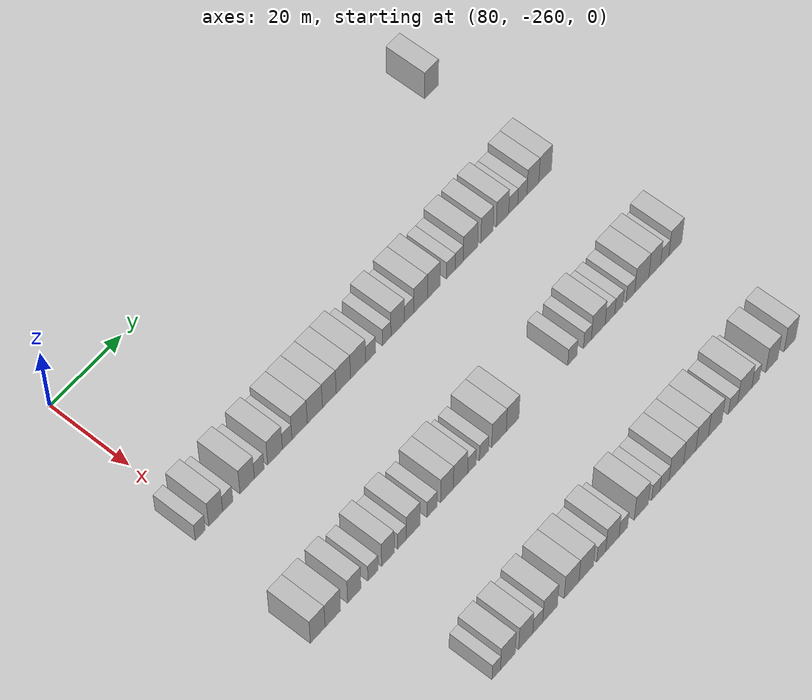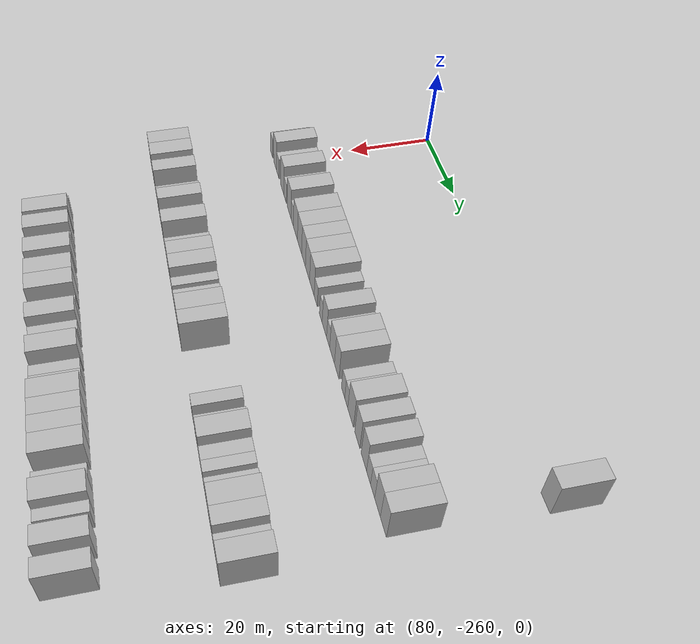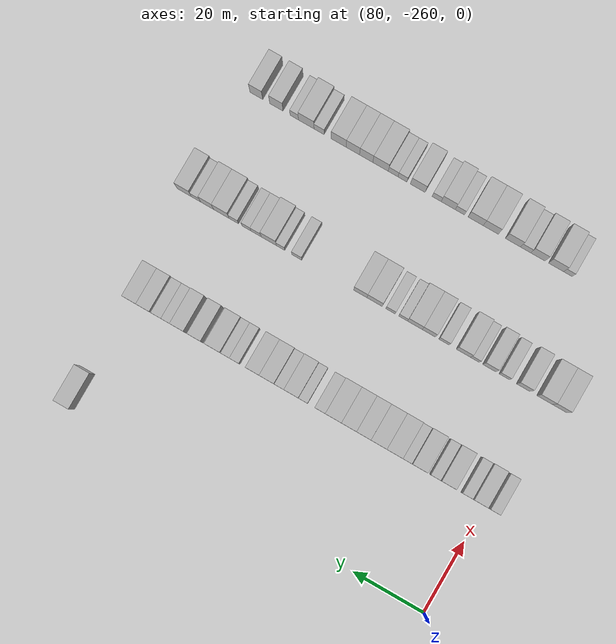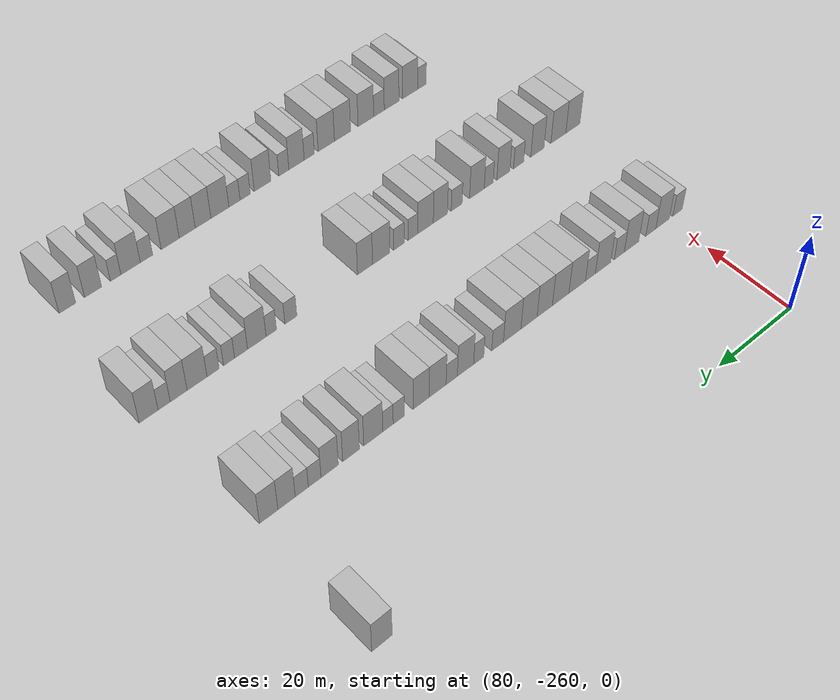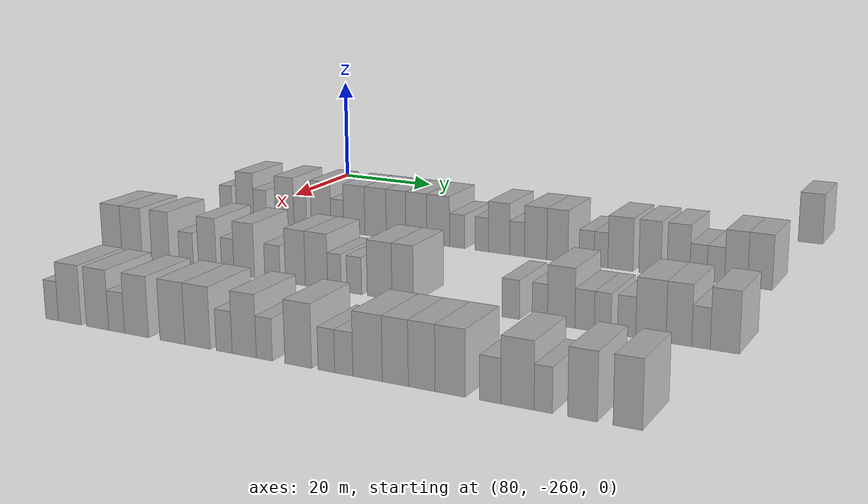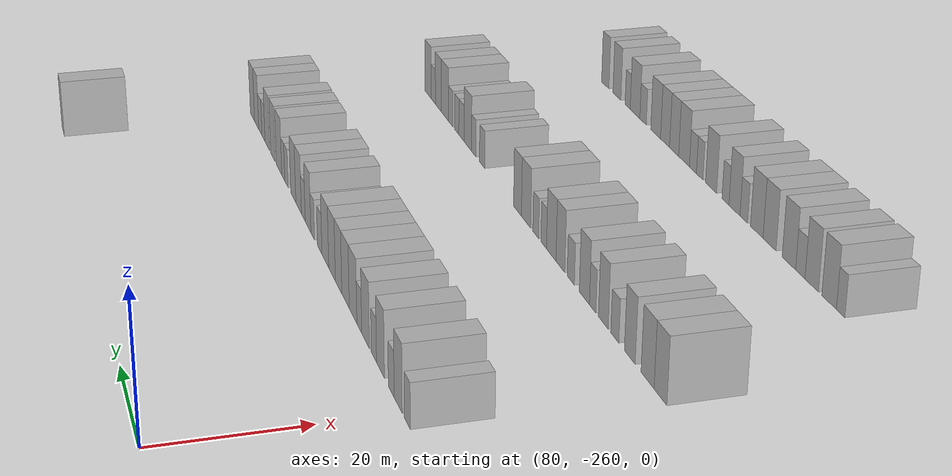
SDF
<sdf version="1.6">
 <world name="default">
  <model name="building_522">
   <static>1</static>
   <pose>85.0000 -158.7223 0 0.000000 0.000000 0.000000</pose>
   <link name="link">
    <pose>0 0 4.50 0 0 0</pose>
    <collision name="collision"><geometry><box><size>10.0000 4.3105 9.0000</size></box></geometry></collision>
    <visual name="visual">
     <cast_shadows>0</cast_shadows>
     <geometry><box><size>10.0000 4.3105 9.0000</size></box></geometry>
     <material>
      <script>
       <uri>model://HANNAS_wall/materials/scripts</uri>
       <uri>model://HANNAS_wall/materials/textures</uri>
       <name>vrc/HANNAS_wall</name>
      </script>
     </material>
    </visual>
   </link>
  </model>
  <model name="building_717">
   <static>1</static>
   <pose>115.0000 -262.4936 0 0.000000 0.000000 0.000000</pose>
   <link name="link">
    <pose>0 0 3.00 0 0 0</pose>
    <collision name="collision"><geometry><box><size>10.0000 2.7873 6.0000</size></box></geometry></collision>
    <visual name="visual">
     <cast_shadows>0</cast_shadows>
     <geometry><box><size>10.0000 2.7873 6.0000</size></box></geometry>
     <material>
      <script>
       <uri>model://HANNAS_wall/materials/scripts</uri>
       <uri>model://HANNAS_wall/materials/textures</uri>
       <name>vrc/HANNAS_wall</name>
      </script>
     </material>
    </visual>
   </link>
  </model>
  <model name="building_718">
   <static>1</static>
   <pose>115.0000 -258.1476 0 0.000000 0.000000 0.000000</pose>
   <link name="link">
    <pose>0 0 4.50 0 0 0</pose>
    <collision name="collision"><geometry><box><size>10.0000 3.9048 9.0000</size></box></geometry></collision>
    <visual name="visual">
     <cast_shadows>0</cast_shadows>
     <geometry><box><size>10.0000 3.9048 9.0000</size></box></geometry>
     <material>
      <script>
       <uri>model://HANNAS_wall/materials/scripts</uri>
       <uri>model://HANNAS_wall/materials/textures</uri>
       <name>vrc/HANNAS_wall</name>
      </script>
     </material>
    </visual>
   </link>
  </model>
  <model name="building_719">
   <static>1</static>
   <pose>115.0000 -254.7558 0 0.000000 0.000000 0.000000</pose>
   <link name="link">
    <pose>0 0 3.00 0 0 0</pose>
    <collision name="collision"><geometry><box><size>10.0000 2.8788 6.0000</size></box></geometry></collision>
    <visual name="visual">
     <cast_shadows>0</cast_shadows>
     <geometry><box><size>10.0000 2.8788 6.0000</size></box></geometry>
     <material>
      <script>
       <uri>model://HANNAS_wall/materials/scripts</uri>
       <uri>model://HANNAS_wall/materials/textures</uri>
       <name>vrc/HANNAS_wall</name>
      </script>
     </material>
    </visual>
   </link>
  </model>
  <model name="building_720">
   <static>1</static>
   <pose>115.0000 -249.2689 0 0.000000 0.000000 0.000000</pose>
   <link name="link">
    <pose>0 0 4.50 0 0 0</pose>
    <collision name="collision"><geometry><box><size>10.0000 4.0949 9.0000</size></box></geometry></collision>
    <visual name="visual">
     <cast_shadows>0</cast_shadows>
     <geometry><box><size>10.0000 4.0949 9.0000</size></box></geometry>
     <material>
      <script>
       <uri>model://HANNAS_wall/materials/scripts</uri>
       <uri>model://HANNAS_wall/materials/textures</uri>
       <name>vrc/HANNAS_wall</name>
      </script>
     </material>
    </visual>
   </link>
  </model>
  <model name="building_721">
   <static>1</static>
   <pose>115.0000 -245.8332 0 0.000000 0.000000 0.000000</pose>
   <link name="link">
    <pose>0 0 3.00 0 0 0</pose>
    <collision name="collision"><geometry><box><size>10.0000 2.7766 6.0000</size></box></geometry></collision>
    <visual name="visual">
     <cast_shadows>0</cast_shadows>
     <geometry><box><size>10.0000 2.7766 6.0000</size></box></geometry>
     <material>
      <script>
       <uri>model://HANNAS_wall/materials/scripts</uri>
       <uri>model://HANNAS_wall/materials/textures</uri>
       <name>vrc/HANNAS_wall</name>
      </script>
     </material>
    </visual>
   </link>
  </model>
  <model name="building_722">
   <static>1</static>
   <pose>115.0000 -241.3110 0 0.000000 0.000000 0.000000</pose>
   <link name="link">
    <pose>0 0 4.50 0 0 0</pose>
    <collision name="collision"><geometry><box><size>10.0000 4.2677 9.0000</size></box></geometry></collision>
    <visual name="visual">
     <cast_shadows>0</cast_shadows>
     <geometry><box><size>10.0000 4.2677 9.0000</size></box></geometry>
     <material>
      <script>
       <uri>model://HANNAS_wall/materials/scripts</uri>
       <uri>model://HANNAS_wall/materials/textures</uri>
       <name>vrc/HANNAS_wall</name>
      </script>
     </material>
    </visual>
   </link>
  </model>
  <model name="building_723">
   <static>1</static>
   <pose>115.0000 -237.8295 0 0.000000 0.000000 0.000000</pose>
   <link name="link">
    <pose>0 0 3.00 0 0 0</pose>
    <collision name="collision"><geometry><box><size>10.0000 2.6954 6.0000</size></box></geometry></collision>
    <visual name="visual">
     <cast_shadows>0</cast_shadows>
     <geometry><box><size>10.0000 2.6954 6.0000</size></box></geometry>
     <material>
      <script>
       <uri>model://HANNAS_wall/materials/scripts</uri>
       <uri>model://HANNAS_wall/materials/textures</uri>
       <name>vrc/HANNAS_wall</name>
      </script>
     </material>
    </visual>
   </link>
  </model>
  <model name="building_724">
   <static>1</static>
   <pose>115.0000 -234.2529 0 0.000000 0.000000 0.000000</pose>
   <link name="link">
    <pose>0 0 4.50 0 0 0</pose>
    <collision name="collision"><geometry><box><size>10.0000 4.4577 9.0000</size></box></geometry></collision>
    <visual name="visual">
     <cast_shadows>0</cast_shadows>
     <geometry><box><size>10.0000 4.4577 9.0000</size></box></geometry>
     <material>
      <script>
       <uri>model://HANNAS_wall/materials/scripts</uri>
       <uri>model://HANNAS_wall/materials/textures</uri>
       <name>vrc/HANNAS_wall</name>
      </script>
     </material>
    </visual>
   </link>
  </model>
  <model name="building_725">
   <static>1</static>
   <pose>115.0000 -229.8142 0 0.000000 0.000000 0.000000</pose>
   <link name="link">
    <pose>0 0 4.50 0 0 0</pose>
    <collision name="collision"><geometry><box><size>10.0000 4.4198 9.0000</size></box></geometry></collision>
    <visual name="visual">
     <cast_shadows>0</cast_shadows>
     <geometry><box><size>10.0000 4.4198 9.0000</size></box></geometry>
     <material>
      <script>
       <uri>model://HANNAS_wall/materials/scripts</uri>
       <uri>model://HANNAS_wall/materials/textures</uri>
       <name>vrc/HANNAS_wall</name>
      </script>
     </material>
    </visual>
   </link>
  </model>
  <model name="building_726">
   <static>1</static>
   <pose>115.0000 -225.6000 0 0.000000 0.000000 0.000000</pose>
   <link name="link">
    <pose>0 0 4.50 0 0 0</pose>
    <collision name="collision"><geometry><box><size>10.0000 4.0085 9.0000</size></box></geometry></collision>
    <visual name="visual">
     <cast_shadows>0</cast_shadows>
     <geometry><box><size>10.0000 4.0085 9.0000</size></box></geometry>
     <material>
      <script>
       <uri>model://HANNAS_wall/materials/scripts</uri>
       <uri>model://HANNAS_wall/materials/textures</uri>
       <name>vrc/HANNAS_wall</name>
      </script>
     </material>
    </visual>
   </link>
  </model>
  <model name="building_727">
   <static>1</static>
   <pose>115.0000 -221.4901 0 0.000000 0.000000 0.000000</pose>
   <link name="link">
    <pose>0 0 4.50 0 0 0</pose>
    <collision name="collision"><geometry><box><size>10.0000 4.2113 9.0000</size></box></geometry></collision>
    <visual name="visual">
     <cast_shadows>0</cast_shadows>
     <geometry><box><size>10.0000 4.2113 9.0000</size></box></geometry>
     <material>
      <script>
       <uri>model://HANNAS_wall/materials/scripts</uri>
       <uri>model://HANNAS_wall/materials/textures</uri>
       <name>vrc/HANNAS_wall</name>
      </script>
     </material>
    </visual>
   </link>
  </model>
  <model name="building_728">
   <static>1</static>
   <pose>115.0000 -217.1423 0 0.000000 0.000000 0.000000</pose>
   <link name="link">
    <pose>0 0 4.50 0 0 0</pose>
    <collision name="collision"><geometry><box><size>10.0000 4.4844 9.0000</size></box></geometry></collision>
    <visual name="visual">
     <cast_shadows>0</cast_shadows>
     <geometry><box><size>10.0000 4.4844 9.0000</size></box></geometry>
     <material>
      <script>
       <uri>model://HANNAS_wall/materials/scripts</uri>
       <uri>model://HANNAS_wall/materials/textures</uri>
       <name>vrc/HANNAS_wall</name>
      </script>
     </material>
    </visual>
   </link>
  </model>
  <model name="building_729">
   <static>1</static>
   <pose>115.0000 -213.4119 0 0.000000 0.000000 0.000000</pose>
   <link name="link">
    <pose>0 0 3.00 0 0 0</pose>
    <collision name="collision"><geometry><box><size>10.0000 2.9763 6.0000</size></box></geometry></collision>
    <visual name="visual">
     <cast_shadows>0</cast_shadows>
     <geometry><box><size>10.0000 2.9763 6.0000</size></box></geometry>
     <material>
      <script>
       <uri>model://HANNAS_wall/materials/scripts</uri>
       <uri>model://HANNAS_wall/materials/textures</uri>
       <name>vrc/HANNAS_wall</name>
      </script>
     </material>
    </visual>
   </link>
  </model>
  <model name="building_730">
   <static>1</static>
   <pose>115.0000 -208.6517 0 0.000000 0.000000 0.000000</pose>
   <link name="link">
    <pose>0 0 3.00 0 0 0</pose>
    <collision name="collision"><geometry><box><size>10.0000 2.5440 6.0000</size></box></geometry></collision>
    <visual name="visual">
     <cast_shadows>0</cast_shadows>
     <geometry><box><size>10.0000 2.5440 6.0000</size></box></geometry>
     <material>
      <script>
       <uri>model://HANNAS_wall/materials/scripts</uri>
       <uri>model://HANNAS_wall/materials/textures</uri>
       <name>vrc/HANNAS_wall</name>
      </script>
     </material>
    </visual>
   </link>
  </model>
  <model name="building_731">
   <static>1</static>
   <pose>115.0000 -205.3633 0 0.000000 0.000000 0.000000</pose>
   <link name="link">
    <pose>0 0 4.50 0 0 0</pose>
    <collision name="collision"><geometry><box><size>10.0000 4.0328 9.0000</size></box></geometry></collision>
    <visual name="visual">
     <cast_shadows>0</cast_shadows>
     <geometry><box><size>10.0000 4.0328 9.0000</size></box></geometry>
     <material>
      <script>
       <uri>model://HANNAS_wall/materials/scripts</uri>
       <uri>model://HANNAS_wall/materials/textures</uri>
       <name>vrc/HANNAS_wall</name>
      </script>
     </material>
    </visual>
   </link>
  </model>
  <model name="building_732">
   <static>1</static>
   <pose>115.0000 -201.9618 0 0.000000 0.000000 0.000000</pose>
   <link name="link">
    <pose>0 0 3.00 0 0 0</pose>
    <collision name="collision"><geometry><box><size>10.0000 2.7702 6.0000</size></box></geometry></collision>
    <visual name="visual">
     <cast_shadows>0</cast_shadows>
     <geometry><box><size>10.0000 2.7702 6.0000</size></box></geometry>
     <material>
      <script>
       <uri>model://HANNAS_wall/materials/scripts</uri>
       <uri>model://HANNAS_wall/materials/textures</uri>
       <name>vrc/HANNAS_wall</name>
      </script>
     </material>
    </visual>
   </link>
  </model>
  <model name="building_733">
   <static>1</static>
   <pose>115.0000 -198.5124 0 0.000000 0.000000 0.000000</pose>
   <link name="link">
    <pose>0 0 4.50 0 0 0</pose>
    <collision name="collision"><geometry><box><size>10.0000 4.1286 9.0000</size></box></geometry></collision>
    <visual name="visual">
     <cast_shadows>0</cast_shadows>
     <geometry><box><size>10.0000 4.1286 9.0000</size></box></geometry>
     <material>
      <script>
       <uri>model://HANNAS_wall/materials/scripts</uri>
       <uri>model://HANNAS_wall/materials/textures</uri>
       <name>vrc/HANNAS_wall</name>
      </script>
     </material>
    </visual>
   </link>
  </model>
  <model name="building_734">
   <static>1</static>
   <pose>115.0000 -194.5249 0 0.000000 0.000000 0.000000</pose>
   <link name="link">
    <pose>0 0 4.50 0 0 0</pose>
    <collision name="collision"><geometry><box><size>10.0000 3.8463 9.0000</size></box></geometry></collision>
    <visual name="visual">
     <cast_shadows>0</cast_shadows>
     <geometry><box><size>10.0000 3.8463 9.0000</size></box></geometry>
     <material>
      <script>
       <uri>model://HANNAS_wall/materials/scripts</uri>
       <uri>model://HANNAS_wall/materials/textures</uri>
       <name>vrc/HANNAS_wall</name>
      </script>
     </material>
    </visual>
   </link>
  </model>
  <model name="building_735">
   <static>1</static>
   <pose>115.0000 -189.2625 0 0.000000 0.000000 0.000000</pose>
   <link name="link">
    <pose>0 0 3.00 0 0 0</pose>
    <collision name="collision"><geometry><box><size>10.0000 2.6785 6.0000</size></box></geometry></collision>
    <visual name="visual">
     <cast_shadows>0</cast_shadows>
     <geometry><box><size>10.0000 2.6785 6.0000</size></box></geometry>
     <material>
      <script>
       <uri>model://HANNAS_wall/materials/scripts</uri>
       <uri>model://HANNAS_wall/materials/textures</uri>
       <name>vrc/HANNAS_wall</name>
      </script>
     </material>
    </visual>
   </link>
  </model>
  <model name="building_736">
   <static>1</static>
   <pose>115.0000 -186.7034 0 0.000000 0.000000 0.000000</pose>
   <link name="link">
    <pose>0 0 3.00 0 0 0</pose>
    <collision name="collision"><geometry><box><size>10.0000 2.4399 6.0000</size></box></geometry></collision>
    <visual name="visual">
     <cast_shadows>0</cast_shadows>
     <geometry><box><size>10.0000 2.4399 6.0000</size></box></geometry>
     <material>
      <script>
       <uri>model://HANNAS_wall/materials/scripts</uri>
       <uri>model://HANNAS_wall/materials/textures</uri>
       <name>vrc/HANNAS_wall</name>
      </script>
     </material>
    </visual>
   </link>
  </model>
  <model name="building_737">
   <static>1</static>
   <pose>115.0000 -183.2917 0 0.000000 0.000000 0.000000</pose>
   <link name="link">
    <pose>0 0 4.50 0 0 0</pose>
    <collision name="collision"><geometry><box><size>10.0000 4.3834 9.0000</size></box></geometry></collision>
    <visual name="visual">
     <cast_shadows>0</cast_shadows>
     <geometry><box><size>10.0000 4.3834 9.0000</size></box></geometry>
     <material>
      <script>
       <uri>model://HANNAS_wall/materials/scripts</uri>
       <uri>model://HANNAS_wall/materials/textures</uri>
       <name>vrc/HANNAS_wall</name>
      </script>
     </material>
    </visual>
   </link>
  </model>
  <model name="building_738">
   <static>1</static>
   <pose>115.0000 -178.2045 0 0.000000 0.000000 0.000000</pose>
   <link name="link">
    <pose>0 0 4.50 0 0 0</pose>
    <collision name="collision"><geometry><box><size>10.0000 3.7910 9.0000</size></box></geometry></collision>
    <visual name="visual">
     <cast_shadows>0</cast_shadows>
     <geometry><box><size>10.0000 3.7910 9.0000</size></box></geometry>
     <material>
      <script>
       <uri>model://HANNAS_wall/materials/scripts</uri>
       <uri>model://HANNAS_wall/materials/textures</uri>
       <name>vrc/HANNAS_wall</name>
      </script>
     </material>
    </visual>
   </link>
  </model>
  <model name="building_739">
   <static>1</static>
   <pose>115.0000 -173.3795 0 0.000000 0.000000 0.000000</pose>
   <link name="link">
    <pose>0 0 4.50 0 0 0</pose>
    <collision name="collision"><geometry><box><size>10.0000 3.8592 9.0000</size></box></geometry></collision>
    <visual name="visual">
     <cast_shadows>0</cast_shadows>
     <geometry><box><size>10.0000 3.8592 9.0000</size></box></geometry>
     <material>
      <script>
       <uri>model://HANNAS_wall/materials/scripts</uri>
       <uri>model://HANNAS_wall/materials/textures</uri>
       <name>vrc/HANNAS_wall</name>
      </script>
     </material>
    </visual>
   </link>
  </model>
  <model name="building_740">
   <static>1</static>
   <pose>115.0000 -170.0487 0 0.000000 0.000000 0.000000</pose>
   <link name="link">
    <pose>0 0 3.00 0 0 0</pose>
    <collision name="collision"><geometry><box><size>10.0000 2.8023 6.0000</size></box></geometry></collision>
    <visual name="visual">
     <cast_shadows>0</cast_shadows>
     <geometry><box><size>10.0000 2.8023 6.0000</size></box></geometry>
     <material>
      <script>
       <uri>model://HANNAS_wall/materials/scripts</uri>
       <uri>model://HANNAS_wall/materials/textures</uri>
       <name>vrc/HANNAS_wall</name>
      </script>
     </material>
    </visual>
   </link>
  </model>
  <model name="building_741">
   <static>1</static>
   <pose>115.0000 -167.2041 0 0.000000 0.000000 0.000000</pose>
   <link name="link">
    <pose>0 0 3.00 0 0 0</pose>
    <collision name="collision"><geometry><box><size>10.0000 2.8870 6.0000</size></box></geometry></collision>
    <visual name="visual">
     <cast_shadows>0</cast_shadows>
     <geometry><box><size>10.0000 2.8870 6.0000</size></box></geometry>
     <material>
      <script>
       <uri>model://HANNAS_wall/materials/scripts</uri>
       <uri>model://HANNAS_wall/materials/textures</uri>
       <name>vrc/HANNAS_wall</name>
      </script>
     </material>
    </visual>
   </link>
  </model>
  <model name="building_742">
   <static>1</static>
   <pose>115.0000 -163.8816 0 0.000000 0.000000 0.000000</pose>
   <link name="link">
    <pose>0 0 4.50 0 0 0</pose>
    <collision name="collision"><geometry><box><size>10.0000 3.7578 9.0000</size></box></geometry></collision>
    <visual name="visual">
     <cast_shadows>0</cast_shadows>
     <geometry><box><size>10.0000 3.7578 9.0000</size></box></geometry>
     <material>
      <script>
       <uri>model://HANNAS_wall/materials/scripts</uri>
       <uri>model://HANNAS_wall/materials/textures</uri>
       <name>vrc/HANNAS_wall</name>
      </script>
     </material>
    </visual>
   </link>
  </model>
  <model name="building_743">
   <static>1</static>
   <pose>115.0000 -160.0214 0 0.000000 0.000000 0.000000</pose>
   <link name="link">
    <pose>0 0 4.50 0 0 0</pose>
    <collision name="collision"><geometry><box><size>10.0000 3.9627 9.0000</size></box></geometry></collision>
    <visual name="visual">
     <cast_shadows>0</cast_shadows>
     <geometry><box><size>10.0000 3.9627 9.0000</size></box></geometry>
     <material>
      <script>
       <uri>model://HANNAS_wall/materials/scripts</uri>
       <uri>model://HANNAS_wall/materials/textures</uri>
       <name>vrc/HANNAS_wall</name>
      </script>
     </material>
    </visual>
   </link>
  </model>
  <model name="building_941">
   <static>1</static>
   <pose>145.0000 -264.1878 0 0.000000 0.000000 0.000000</pose>
   <link name="link">
    <pose>0 0 4.50 0 0 0</pose>
    <collision name="collision"><geometry><box><size>10.0000 4.1426 9.0000</size></box></geometry></collision>
    <visual name="visual">
     <cast_shadows>0</cast_shadows>
     <geometry><box><size>10.0000 4.1426 9.0000</size></box></geometry>
     <material>
      <script>
       <uri>model://HANNAS_wall/materials/scripts</uri>
       <uri>model://HANNAS_wall/materials/textures</uri>
       <name>vrc/HANNAS_wall</name>
      </script>
     </material>
    </visual>
   </link>
  </model>
  <model name="building_942">
   <static>1</static>
   <pose>145.0000 -259.9372 0 0.000000 0.000000 0.000000</pose>
   <link name="link">
    <pose>0 0 4.50 0 0 0</pose>
    <collision name="collision"><geometry><box><size>10.0000 4.3585 9.0000</size></box></geometry></collision>
    <visual name="visual">
     <cast_shadows>0</cast_shadows>
     <geometry><box><size>10.0000 4.3585 9.0000</size></box></geometry>
     <material>
      <script>
       <uri>model://HANNAS_wall/materials/scripts</uri>
       <uri>model://HANNAS_wall/materials/textures</uri>
       <name>vrc/HANNAS_wall</name>
      </script>
     </material>
    </visual>
   </link>
  </model>
  <model name="building_943">
   <static>1</static>
   <pose>145.0000 -253.8679 0 0.000000 0.000000 0.000000</pose>
   <link name="link">
    <pose>0 0 4.50 0 0 0</pose>
    <collision name="collision"><geometry><box><size>10.0000 3.7802 9.0000</size></box></geometry></collision>
    <visual name="visual">
     <cast_shadows>0</cast_shadows>
     <geometry><box><size>10.0000 3.7802 9.0000</size></box></geometry>
     <material>
      <script>
       <uri>model://HANNAS_wall/materials/scripts</uri>
       <uri>model://HANNAS_wall/materials/textures</uri>
       <name>vrc/HANNAS_wall</name>
      </script>
     </material>
    </visual>
   </link>
  </model>
  <model name="building_944">
   <static>1</static>
   <pose>145.0000 -248.5201 0 0.000000 0.000000 0.000000</pose>
   <link name="link">
    <pose>0 0 3.00 0 0 0</pose>
    <collision name="collision"><geometry><box><size>10.0000 2.9154 6.0000</size></box></geometry></collision>
    <visual name="visual">
     <cast_shadows>0</cast_shadows>
     <geometry><box><size>10.0000 2.9154 6.0000</size></box></geometry>
     <material>
      <script>
       <uri>model://HANNAS_wall/materials/scripts</uri>
       <uri>model://HANNAS_wall/materials/textures</uri>
       <name>vrc/HANNAS_wall</name>
      </script>
     </material>
    </visual>
   </link>
  </model>
  <model name="building_945">
   <static>1</static>
   <pose>145.0000 -244.2402 0 0.000000 0.000000 0.000000</pose>
   <link name="link">
    <pose>0 0 4.50 0 0 0</pose>
    <collision name="collision"><geometry><box><size>10.0000 3.6443 9.0000</size></box></geometry></collision>
    <visual name="visual">
     <cast_shadows>0</cast_shadows>
     <geometry><box><size>10.0000 3.6443 9.0000</size></box></geometry>
     <material>
      <script>
       <uri>model://HANNAS_wall/materials/scripts</uri>
       <uri>model://HANNAS_wall/materials/textures</uri>
       <name>vrc/HANNAS_wall</name>
      </script>
     </material>
    </visual>
   </link>
  </model>
  <model name="building_946">
   <static>1</static>
   <pose>145.0000 -240.1816 0 0.000000 0.000000 0.000000</pose>
   <link name="link">
    <pose>0 0 3.00 0 0 0</pose>
    <collision name="collision"><geometry><box><size>10.0000 2.4728 6.0000</size></box></geometry></collision>
    <visual name="visual">
     <cast_shadows>0</cast_shadows>
     <geometry><box><size>10.0000 2.4728 6.0000</size></box></geometry>
     <material>
      <script>
       <uri>model://HANNAS_wall/materials/scripts</uri>
       <uri>model://HANNAS_wall/materials/textures</uri>
       <name>vrc/HANNAS_wall</name>
      </script>
     </material>
    </visual>
   </link>
  </model>
  <model name="building_947">
   <static>1</static>
   <pose>145.0000 -236.9257 0 0.000000 0.000000 0.000000</pose>
   <link name="link">
    <pose>0 0 4.50 0 0 0</pose>
    <collision name="collision"><geometry><box><size>10.0000 4.0391 9.0000</size></box></geometry></collision>
    <visual name="visual">
     <cast_shadows>0</cast_shadows>
     <geometry><box><size>10.0000 4.0391 9.0000</size></box></geometry>
     <material>
      <script>
       <uri>model://HANNAS_wall/materials/scripts</uri>
       <uri>model://HANNAS_wall/materials/textures</uri>
       <name>vrc/HANNAS_wall</name>
      </script>
     </material>
    </visual>
   </link>
  </model>
  <model name="building_948">
   <static>1</static>
   <pose>145.0000 -231.4304 0 0.000000 0.000000 0.000000</pose>
   <link name="link">
    <pose>0 0 3.00 0 0 0</pose>
    <collision name="collision"><geometry><box><size>10.0000 2.9514 6.0000</size></box></geometry></collision>
    <visual name="visual">
     <cast_shadows>0</cast_shadows>
     <geometry><box><size>10.0000 2.9514 6.0000</size></box></geometry>
     <material>
      <script>
       <uri>model://HANNAS_wall/materials/scripts</uri>
       <uri>model://HANNAS_wall/materials/textures</uri>
       <name>vrc/HANNAS_wall</name>
      </script>
     </material>
    </visual>
   </link>
  </model>
  <model name="building_949">
   <static>1</static>
   <pose>145.0000 -227.0706 0 0.000000 0.000000 0.000000</pose>
   <link name="link">
    <pose>0 0 4.50 0 0 0</pose>
    <collision name="collision"><geometry><box><size>10.0000 3.7683 9.0000</size></box></geometry></collision>
    <visual name="visual">
     <cast_shadows>0</cast_shadows>
     <geometry><box><size>10.0000 3.7683 9.0000</size></box></geometry>
     <material>
      <script>
       <uri>model://HANNAS_wall/materials/scripts</uri>
       <uri>model://HANNAS_wall/materials/textures</uri>
       <name>vrc/HANNAS_wall</name>
      </script>
     </material>
    </visual>
   </link>
  </model>
  <model name="building_950">
   <static>1</static>
   <pose>145.0000 -223.1091 0 0.000000 0.000000 0.000000</pose>
   <link name="link">
    <pose>0 0 4.50 0 0 0</pose>
    <collision name="collision"><geometry><box><size>10.0000 4.1546 9.0000</size></box></geometry></collision>
    <visual name="visual">
     <cast_shadows>0</cast_shadows>
     <geometry><box><size>10.0000 4.1546 9.0000</size></box></geometry>
     <material>
      <script>
       <uri>model://HANNAS_wall/materials/scripts</uri>
       <uri>model://HANNAS_wall/materials/textures</uri>
       <name>vrc/HANNAS_wall</name>
      </script>
     </material>
    </visual>
   </link>
  </model>
  <model name="building_951">
   <static>1</static>
   <pose>145.0000 -219.7799 0 0.000000 0.000000 0.000000</pose>
   <link name="link">
    <pose>0 0 3.00 0 0 0</pose>
    <collision name="collision"><geometry><box><size>10.0000 2.5037 6.0000</size></box></geometry></collision>
    <visual name="visual">
     <cast_shadows>0</cast_shadows>
     <geometry><box><size>10.0000 2.5037 6.0000</size></box></geometry>
     <material>
      <script>
       <uri>model://HANNAS_wall/materials/scripts</uri>
       <uri>model://HANNAS_wall/materials/textures</uri>
       <name>vrc/HANNAS_wall</name>
      </script>
     </material>
    </visual>
   </link>
  </model>
  <model name="building_952">
   <static>1</static>
   <pose>145.0000 -216.1854 0 0.000000 0.000000 0.000000</pose>
   <link name="link">
    <pose>0 0 3.00 0 0 0</pose>
    <collision name="collision"><geometry><box><size>10.0000 2.6853 6.0000</size></box></geometry></collision>
    <visual name="visual">
     <cast_shadows>0</cast_shadows>
     <geometry><box><size>10.0000 2.6853 6.0000</size></box></geometry>
     <material>
      <script>
       <uri>model://HANNAS_wall/materials/scripts</uri>
       <uri>model://HANNAS_wall/materials/textures</uri>
       <name>vrc/HANNAS_wall</name>
      </script>
     </material>
    </visual>
   </link>
  </model>
  <model name="building_953">
   <static>1</static>
   <pose>145.0000 -211.6534 0 0.000000 0.000000 0.000000</pose>
   <link name="link">
    <pose>0 0 4.50 0 0 0</pose>
    <collision name="collision"><geometry><box><size>10.0000 4.3787 9.0000</size></box></geometry></collision>
    <visual name="visual">
     <cast_shadows>0</cast_shadows>
     <geometry><box><size>10.0000 4.3787 9.0000</size></box></geometry>
     <material>
      <script>
       <uri>model://HANNAS_wall/materials/scripts</uri>
       <uri>model://HANNAS_wall/materials/textures</uri>
       <name>vrc/HANNAS_wall</name>
      </script>
     </material>
    </visual>
   </link>
  </model>
  <model name="building_954">
   <static>1</static>
   <pose>145.0000 -207.5703 0 0.000000 0.000000 0.000000</pose>
   <link name="link">
    <pose>0 0 4.50 0 0 0</pose>
    <collision name="collision"><geometry><box><size>10.0000 3.7874 9.0000</size></box></geometry></collision>
    <visual name="visual">
     <cast_shadows>0</cast_shadows>
     <geometry><box><size>10.0000 3.7874 9.0000</size></box></geometry>
     <material>
      <script>
       <uri>model://HANNAS_wall/materials/scripts</uri>
       <uri>model://HANNAS_wall/materials/textures</uri>
       <name>vrc/HANNAS_wall</name>
      </script>
     </material>
    </visual>
   </link>
  </model>
  <model name="building_955">
   <static>1</static>
   <pose>145.0000 -189.4089 0 0.000000 0.000000 0.000000</pose>
   <link name="link">
    <pose>0 0 3.00 0 0 0</pose>
    <collision name="collision"><geometry><box><size>10.0000 2.8451 6.0000</size></box></geometry></collision>
    <visual name="visual">
     <cast_shadows>0</cast_shadows>
     <geometry><box><size>10.0000 2.8451 6.0000</size></box></geometry>
     <material>
      <script>
       <uri>model://HANNAS_wall/materials/scripts</uri>
       <uri>model://HANNAS_wall/materials/textures</uri>
       <name>vrc/HANNAS_wall</name>
      </script>
     </material>
    </visual>
   </link>
  </model>
  <model name="building_956">
   <static>1</static>
   <pose>145.0000 -184.7686 0 0.000000 0.000000 0.000000</pose>
   <link name="link">
    <pose>0 0 3.00 0 0 0</pose>
    <collision name="collision"><geometry><box><size>10.0000 2.4355 6.0000</size></box></geometry></collision>
    <visual name="visual">
     <cast_shadows>0</cast_shadows>
     <geometry><box><size>10.0000 2.4355 6.0000</size></box></geometry>
     <material>
      <script>
       <uri>model://HANNAS_wall/materials/scripts</uri>
       <uri>model://HANNAS_wall/materials/textures</uri>
       <name>vrc/HANNAS_wall</name>
      </script>
     </material>
    </visual>
   </link>
  </model>
  <model name="building_957">
   <static>1</static>
   <pose>145.0000 -181.4010 0 0.000000 0.000000 0.000000</pose>
   <link name="link">
    <pose>0 0 4.50 0 0 0</pose>
    <collision name="collision"><geometry><box><size>10.0000 4.2997 9.0000</size></box></geometry></collision>
    <visual name="visual">
     <cast_shadows>0</cast_shadows>
     <geometry><box><size>10.0000 4.2997 9.0000</size></box></geometry>
     <material>
      <script>
       <uri>model://HANNAS_wall/materials/scripts</uri>
       <uri>model://HANNAS_wall/materials/textures</uri>
       <name>vrc/HANNAS_wall</name>
      </script>
     </material>
    </visual>
   </link>
  </model>
  <model name="building_958">
   <static>1</static>
   <pose>145.0000 -177.7543 0 0.000000 0.000000 0.000000</pose>
   <link name="link">
    <pose>0 0 3.00 0 0 0</pose>
    <collision name="collision"><geometry><box><size>10.0000 2.9938 6.0000</size></box></geometry></collision>
    <visual name="visual">
     <cast_shadows>0</cast_shadows>
     <geometry><box><size>10.0000 2.9938 6.0000</size></box></geometry>
     <material>
      <script>
       <uri>model://HANNAS_wall/materials/scripts</uri>
       <uri>model://HANNAS_wall/materials/textures</uri>
       <name>vrc/HANNAS_wall</name>
      </script>
     </material>
    </visual>
   </link>
  </model>
  <model name="building_959">
   <static>1</static>
   <pose>145.0000 -174.9954 0 0.000000 0.000000 0.000000</pose>
   <link name="link">
    <pose>0 0 3.00 0 0 0</pose>
    <collision name="collision"><geometry><box><size>10.0000 2.5240 6.0000</size></box></geometry></collision>
    <visual name="visual">
     <cast_shadows>0</cast_shadows>
     <geometry><box><size>10.0000 2.5240 6.0000</size></box></geometry>
     <material>
      <script>
       <uri>model://HANNAS_wall/materials/scripts</uri>
       <uri>model://HANNAS_wall/materials/textures</uri>
       <name>vrc/HANNAS_wall</name>
      </script>
     </material>
    </visual>
   </link>
  </model>
  <model name="building_960">
   <static>1</static>
   <pose>145.0000 -171.3748 0 0.000000 0.000000 0.000000</pose>
   <link name="link">
    <pose>0 0 3.00 0 0 0</pose>
    <collision name="collision"><geometry><box><size>10.0000 2.7172 6.0000</size></box></geometry></collision>
    <visual name="visual">
     <cast_shadows>0</cast_shadows>
     <geometry><box><size>10.0000 2.7172 6.0000</size></box></geometry>
     <material>
      <script>
       <uri>model://HANNAS_wall/materials/scripts</uri>
       <uri>model://HANNAS_wall/materials/textures</uri>
       <name>vrc/HANNAS_wall</name>
      </script>
     </material>
    </visual>
   </link>
  </model>
  <model name="building_961">
   <static>1</static>
   <pose>145.0000 -167.7943 0 0.000000 0.000000 0.000000</pose>
   <link name="link">
    <pose>0 0 4.50 0 0 0</pose>
    <collision name="collision"><geometry><box><size>10.0000 4.4437 9.0000</size></box></geometry></collision>
    <visual name="visual">
     <cast_shadows>0</cast_shadows>
     <geometry><box><size>10.0000 4.4437 9.0000</size></box></geometry>
     <material>
      <script>
       <uri>model://HANNAS_wall/materials/scripts</uri>
       <uri>model://HANNAS_wall/materials/textures</uri>
       <name>vrc/HANNAS_wall</name>
      </script>
     </material>
    </visual>
   </link>
  </model>
  <model name="building_962">
   <static>1</static>
   <pose>145.0000 -163.7093 0 0.000000 0.000000 0.000000</pose>
   <link name="link">
    <pose>0 0 4.50 0 0 0</pose>
    <collision name="collision"><geometry><box><size>10.0000 3.7263 9.0000</size></box></geometry></collision>
    <visual name="visual">
     <cast_shadows>0</cast_shadows>
     <geometry><box><size>10.0000 3.7263 9.0000</size></box></geometry>
     <material>
      <script>
       <uri>model://HANNAS_wall/materials/scripts</uri>
       <uri>model://HANNAS_wall/materials/textures</uri>
       <name>vrc/HANNAS_wall</name>
      </script>
     </material>
    </visual>
   </link>
  </model>
  <model name="building_963">
   <static>1</static>
   <pose>145.0000 -160.5197 0 0.000000 0.000000 0.000000</pose>
   <link name="link">
    <pose>0 0 3.00 0 0 0</pose>
    <collision name="collision"><geometry><box><size>10.0000 2.6530 6.0000</size></box></geometry></collision>
    <visual name="visual">
     <cast_shadows>0</cast_shadows>
     <geometry><box><size>10.0000 2.6530 6.0000</size></box></geometry>
     <material>
      <script>
       <uri>model://HANNAS_wall/materials/scripts</uri>
       <uri>model://HANNAS_wall/materials/textures</uri>
       <name>vrc/HANNAS_wall</name>
      </script>
     </material>
    </visual>
   </link>
  </model>
  <model name="building_964">
   <static>1</static>
   <pose>145.0000 -157.1366 0 0.000000 0.000000 0.000000</pose>
   <link name="link">
    <pose>0 0 4.50 0 0 0</pose>
    <collision name="collision"><geometry><box><size>10.0000 4.1133 9.0000</size></box></geometry></collision>
    <visual name="visual">
     <cast_shadows>0</cast_shadows>
     <geometry><box><size>10.0000 4.1133 9.0000</size></box></geometry>
     <material>
      <script>
       <uri>model://HANNAS_wall/materials/scripts</uri>
       <uri>model://HANNAS_wall/materials/textures</uri>
       <name>vrc/HANNAS_wall</name>
      </script>
     </material>
    </visual>
   </link>
  </model>
  <model name="building_1160">
   <static>1</static>
   <pose>175.0000 -249.6336 0 0.000000 0.000000 0.000000</pose>
   <link name="link">
    <pose>0 0 3.00 0 0 0</pose>
    <collision name="collision"><geometry><box><size>10.0000 2.4274 6.0000</size></box></geometry></collision>
    <visual name="visual">
     <cast_shadows>0</cast_shadows>
     <geometry><box><size>10.0000 2.4274 6.0000</size></box></geometry>
     <material>
      <script>
       <uri>model://HANNAS_wall/materials/scripts</uri>
       <uri>model://HANNAS_wall/materials/textures</uri>
       <name>vrc/HANNAS_wall</name>
      </script>
     </material>
    </visual>
   </link>
  </model>
  <model name="building_1161">
   <static>1</static>
   <pose>175.0000 -246.2828 0 0.000000 0.000000 0.000000</pose>
   <link name="link">
    <pose>0 0 4.50 0 0 0</pose>
    <collision name="collision"><geometry><box><size>10.0000 4.2743 9.0000</size></box></geometry></collision>
    <visual name="visual">
     <cast_shadows>0</cast_shadows>
     <geometry><box><size>10.0000 4.2743 9.0000</size></box></geometry>
     <material>
      <script>
       <uri>model://HANNAS_wall/materials/scripts</uri>
       <uri>model://HANNAS_wall/materials/textures</uri>
       <name>vrc/HANNAS_wall</name>
      </script>
     </material>
    </visual>
   </link>
  </model>
  <model name="building_1162">
   <static>1</static>
   <pose>175.0000 -241.0972 0 0.000000 0.000000 0.000000</pose>
   <link name="link">
    <pose>0 0 4.50 0 0 0</pose>
    <collision name="collision"><geometry><box><size>10.0000 4.0969 9.0000</size></box></geometry></collision>
    <visual name="visual">
     <cast_shadows>0</cast_shadows>
     <geometry><box><size>10.0000 4.0969 9.0000</size></box></geometry>
     <material>
      <script>
       <uri>model://HANNAS_wall/materials/scripts</uri>
       <uri>model://HANNAS_wall/materials/textures</uri>
       <name>vrc/HANNAS_wall</name>
      </script>
     </material>
    </visual>
   </link>
  </model>
  <model name="building_1163">
   <static>1</static>
   <pose>175.0000 -237.5926 0 0.000000 0.000000 0.000000</pose>
   <link name="link">
    <pose>0 0 3.00 0 0 0</pose>
    <collision name="collision"><geometry><box><size>10.0000 2.9122 6.0000</size></box></geometry></collision>
    <visual name="visual">
     <cast_shadows>0</cast_shadows>
     <geometry><box><size>10.0000 2.9122 6.0000</size></box></geometry>
     <material>
      <script>
       <uri>model://HANNAS_wall/materials/scripts</uri>
       <uri>model://HANNAS_wall/materials/textures</uri>
       <name>vrc/HANNAS_wall</name>
      </script>
     </material>
    </visual>
   </link>
  </model>
  <model name="building_1164">
   <static>1</static>
   <pose>175.0000 -233.9845 0 0.000000 0.000000 0.000000</pose>
   <link name="link">
    <pose>0 0 4.50 0 0 0</pose>
    <collision name="collision"><geometry><box><size>10.0000 4.3040 9.0000</size></box></geometry></collision>
    <visual name="visual">
     <cast_shadows>0</cast_shadows>
     <geometry><box><size>10.0000 4.3040 9.0000</size></box></geometry>
     <material>
      <script>
       <uri>model://HANNAS_wall/materials/scripts</uri>
       <uri>model://HANNAS_wall/materials/textures</uri>
       <name>vrc/HANNAS_wall</name>
      </script>
     </material>
    </visual>
   </link>
  </model>
  <model name="building_1165">
   <static>1</static>
   <pose>175.0000 -227.6616 0 0.000000 0.000000 0.000000</pose>
   <link name="link">
    <pose>0 0 4.50 0 0 0</pose>
    <collision name="collision"><geometry><box><size>10.0000 4.3418 9.0000</size></box></geometry></collision>
    <visual name="visual">
     <cast_shadows>0</cast_shadows>
     <geometry><box><size>10.0000 4.3418 9.0000</size></box></geometry>
     <material>
      <script>
       <uri>model://HANNAS_wall/materials/scripts</uri>
       <uri>model://HANNAS_wall/materials/textures</uri>
       <name>vrc/HANNAS_wall</name>
      </script>
     </material>
    </visual>
   </link>
  </model>
  <model name="building_1166">
   <static>1</static>
   <pose>175.0000 -223.3276 0 0.000000 0.000000 0.000000</pose>
   <link name="link">
    <pose>0 0 4.50 0 0 0</pose>
    <collision name="collision"><geometry><box><size>10.0000 4.3262 9.0000</size></box></geometry></collision>
    <visual name="visual">
     <cast_shadows>0</cast_shadows>
     <geometry><box><size>10.0000 4.3262 9.0000</size></box></geometry>
     <material>
      <script>
       <uri>model://HANNAS_wall/materials/scripts</uri>
       <uri>model://HANNAS_wall/materials/textures</uri>
       <name>vrc/HANNAS_wall</name>
      </script>
     </material>
    </visual>
   </link>
  </model>
  <model name="building_1167">
   <static>1</static>
   <pose>175.0000 -218.8287 0 0.000000 0.000000 0.000000</pose>
   <link name="link">
    <pose>0 0 3.00 0 0 0</pose>
    <collision name="collision"><geometry><box><size>10.0000 2.6717 6.0000</size></box></geometry></collision>
    <visual name="visual">
     <cast_shadows>0</cast_shadows>
     <geometry><box><size>10.0000 2.6717 6.0000</size></box></geometry>
     <material>
      <script>
       <uri>model://HANNAS_wall/materials/scripts</uri>
       <uri>model://HANNAS_wall/materials/textures</uri>
       <name>vrc/HANNAS_wall</name>
      </script>
     </material>
    </visual>
   </link>
  </model>
  <model name="building_1168">
   <static>1</static>
   <pose>175.0000 -215.4937 0 0.000000 0.000000 0.000000</pose>
   <link name="link">
    <pose>0 0 4.50 0 0 0</pose>
    <collision name="collision"><geometry><box><size>10.0000 3.9983 9.0000</size></box></geometry></collision>
    <visual name="visual">
     <cast_shadows>0</cast_shadows>
     <geometry><box><size>10.0000 3.9983 9.0000</size></box></geometry>
     <material>
      <script>
       <uri>model://HANNAS_wall/materials/scripts</uri>
       <uri>model://HANNAS_wall/materials/textures</uri>
       <name>vrc/HANNAS_wall</name>
      </script>
     </material>
    </visual>
   </link>
  </model>
  <model name="building_1169">
   <static>1</static>
   <pose>175.0000 -212.1964 0 0.000000 0.000000 0.000000</pose>
   <link name="link">
    <pose>0 0 3.00 0 0 0</pose>
    <collision name="collision"><geometry><box><size>10.0000 2.5963 6.0000</size></box></geometry></collision>
    <visual name="visual">
     <cast_shadows>0</cast_shadows>
     <geometry><box><size>10.0000 2.5963 6.0000</size></box></geometry>
     <material>
      <script>
       <uri>model://HANNAS_wall/materials/scripts</uri>
       <uri>model://HANNAS_wall/materials/textures</uri>
       <name>vrc/HANNAS_wall</name>
      </script>
     </material>
    </visual>
   </link>
  </model>
  <model name="building_1170">
   <static>1</static>
   <pose>175.0000 -206.7779 0 0.000000 0.000000 0.000000</pose>
   <link name="link">
    <pose>0 0 4.50 0 0 0</pose>
    <collision name="collision"><geometry><box><size>10.0000 4.2405 9.0000</size></box></geometry></collision>
    <visual name="visual">
     <cast_shadows>0</cast_shadows>
     <geometry><box><size>10.0000 4.2405 9.0000</size></box></geometry>
     <material>
      <script>
       <uri>model://HANNAS_wall/materials/scripts</uri>
       <uri>model://HANNAS_wall/materials/textures</uri>
       <name>vrc/HANNAS_wall</name>
      </script>
     </material>
    </visual>
   </link>
  </model>
  <model name="building_1171">
   <static>1</static>
   <pose>175.0000 -202.3778 0 0.000000 0.000000 0.000000</pose>
   <link name="link">
    <pose>0 0 3.00 0 0 0</pose>
    <collision name="collision"><geometry><box><size>10.0000 2.5599 6.0000</size></box></geometry></collision>
    <visual name="visual">
     <cast_shadows>0</cast_shadows>
     <geometry><box><size>10.0000 2.5599 6.0000</size></box></geometry>
     <material>
      <script>
       <uri>model://HANNAS_wall/materials/scripts</uri>
       <uri>model://HANNAS_wall/materials/textures</uri>
       <name>vrc/HANNAS_wall</name>
      </script>
     </material>
    </visual>
   </link>
  </model>
  <model name="building_1172">
   <static>1</static>
   <pose>175.0000 -199.7003 0 0.000000 0.000000 0.000000</pose>
   <link name="link">
    <pose>0 0 3.00 0 0 0</pose>
    <collision name="collision"><geometry><box><size>10.0000 2.7951 6.0000</size></box></geometry></collision>
    <visual name="visual">
     <cast_shadows>0</cast_shadows>
     <geometry><box><size>10.0000 2.7951 6.0000</size></box></geometry>
     <material>
      <script>
       <uri>model://HANNAS_wall/materials/scripts</uri>
       <uri>model://HANNAS_wall/materials/textures</uri>
       <name>vrc/HANNAS_wall</name>
      </script>
     </material>
    </visual>
   </link>
  </model>
  <model name="building_1173">
   <static>1</static>
   <pose>175.0000 -196.0929 0 0.000000 0.000000 0.000000</pose>
   <link name="link">
    <pose>0 0 4.50 0 0 0</pose>
    <collision name="collision"><geometry><box><size>10.0000 4.4197 9.0000</size></box></geometry></collision>
    <visual name="visual">
     <cast_shadows>0</cast_shadows>
     <geometry><box><size>10.0000 4.4197 9.0000</size></box></geometry>
     <material>
      <script>
       <uri>model://HANNAS_wall/materials/scripts</uri>
       <uri>model://HANNAS_wall/materials/textures</uri>
       <name>vrc/HANNAS_wall</name>
      </script>
     </material>
    </visual>
   </link>
  </model>
  <model name="building_1174">
   <static>1</static>
   <pose>175.0000 -191.9741 0 0.000000 0.000000 0.000000</pose>
   <link name="link">
    <pose>0 0 4.50 0 0 0</pose>
    <collision name="collision"><geometry><box><size>10.0000 3.8180 9.0000</size></box></geometry></collision>
    <visual name="visual">
     <cast_shadows>0</cast_shadows>
     <geometry><box><size>10.0000 3.8180 9.0000</size></box></geometry>
     <material>
      <script>
       <uri>model://HANNAS_wall/materials/scripts</uri>
       <uri>model://HANNAS_wall/materials/textures</uri>
       <name>vrc/HANNAS_wall</name>
      </script>
     </material>
    </visual>
   </link>
  </model>
  <model name="building_1175">
   <static>1</static>
   <pose>175.0000 -188.1334 0 0.000000 0.000000 0.000000</pose>
   <link name="link">
    <pose>0 0 4.50 0 0 0</pose>
    <collision name="collision"><geometry><box><size>10.0000 3.8634 9.0000</size></box></geometry></collision>
    <visual name="visual">
     <cast_shadows>0</cast_shadows>
     <geometry><box><size>10.0000 3.8634 9.0000</size></box></geometry>
     <material>
      <script>
       <uri>model://HANNAS_wall/materials/scripts</uri>
       <uri>model://HANNAS_wall/materials/textures</uri>
       <name>vrc/HANNAS_wall</name>
      </script>
     </material>
    </visual>
   </link>
  </model>
  <model name="building_1176">
   <static>1</static>
   <pose>175.0000 -184.0520 0 0.000000 0.000000 0.000000</pose>
   <link name="link">
    <pose>0 0 4.50 0 0 0</pose>
    <collision name="collision"><geometry><box><size>10.0000 4.2995 9.0000</size></box></geometry></collision>
    <visual name="visual">
     <cast_shadows>0</cast_shadows>
     <geometry><box><size>10.0000 4.2995 9.0000</size></box></geometry>
     <material>
      <script>
       <uri>model://HANNAS_wall/materials/scripts</uri>
       <uri>model://HANNAS_wall/materials/textures</uri>
       <name>vrc/HANNAS_wall</name>
      </script>
     </material>
    </visual>
   </link>
  </model>
  <model name="building_1177">
   <static>1</static>
   <pose>175.0000 -178.4486 0 0.000000 0.000000 0.000000</pose>
   <link name="link">
    <pose>0 0 3.00 0 0 0</pose>
    <collision name="collision"><geometry><box><size>10.0000 2.9072 6.0000</size></box></geometry></collision>
    <visual name="visual">
     <cast_shadows>0</cast_shadows>
     <geometry><box><size>10.0000 2.9072 6.0000</size></box></geometry>
     <material>
      <script>
       <uri>model://HANNAS_wall/materials/scripts</uri>
       <uri>model://HANNAS_wall/materials/textures</uri>
       <name>vrc/HANNAS_wall</name>
      </script>
     </material>
    </visual>
   </link>
  </model>
  <model name="building_1178">
   <static>1</static>
   <pose>175.0000 -174.7503 0 0.000000 0.000000 0.000000</pose>
   <link name="link">
    <pose>0 0 4.50 0 0 0</pose>
    <collision name="collision"><geometry><box><size>10.0000 4.4894 9.0000</size></box></geometry></collision>
    <visual name="visual">
     <cast_shadows>0</cast_shadows>
     <geometry><box><size>10.0000 4.4894 9.0000</size></box></geometry>
     <material>
      <script>
       <uri>model://HANNAS_wall/materials/scripts</uri>
       <uri>model://HANNAS_wall/materials/textures</uri>
       <name>vrc/HANNAS_wall</name>
      </script>
     </material>
    </visual>
   </link>
  </model>
  <model name="building_1179">
   <static>1</static>
   <pose>175.0000 -171.2935 0 0.000000 0.000000 0.000000</pose>
   <link name="link">
    <pose>0 0 3.00 0 0 0</pose>
    <collision name="collision"><geometry><box><size>10.0000 2.4243 6.0000</size></box></geometry></collision>
    <visual name="visual">
     <cast_shadows>0</cast_shadows>
     <geometry><box><size>10.0000 2.4243 6.0000</size></box></geometry>
     <material>
      <script>
       <uri>model://HANNAS_wall/materials/scripts</uri>
       <uri>model://HANNAS_wall/materials/textures</uri>
       <name>vrc/HANNAS_wall</name>
      </script>
     </material>
    </visual>
   </link>
  </model>
  <model name="building_1180">
   <static>1</static>
   <pose>175.0000 -166.1612 0 0.000000 0.000000 0.000000</pose>
   <link name="link">
    <pose>0 0 4.50 0 0 0</pose>
    <collision name="collision"><geometry><box><size>10.0000 3.8404 9.0000</size></box></geometry></collision>
    <visual name="visual">
     <cast_shadows>0</cast_shadows>
     <geometry><box><size>10.0000 3.8404 9.0000</size></box></geometry>
     <material>
      <script>
       <uri>model://HANNAS_wall/materials/scripts</uri>
       <uri>model://HANNAS_wall/materials/textures</uri>
       <name>vrc/HANNAS_wall</name>
      </script>
     </material>
    </visual>
   </link>
  </model>
  <model name="building_1181">
   <static>1</static>
   <pose>175.0000 -160.3953 0 0.000000 0.000000 0.000000</pose>
   <link name="link">
    <pose>0 0 4.50 0 0 0</pose>
    <collision name="collision"><geometry><box><size>10.0000 3.6912 9.0000</size></box></geometry></collision>
    <visual name="visual">
     <cast_shadows>0</cast_shadows>
     <geometry><box><size>10.0000 3.6912 9.0000</size></box></geometry>
     <material>
      <script>
       <uri>model://HANNAS_wall/materials/scripts</uri>
       <uri>model://HANNAS_wall/materials/textures</uri>
       <name>vrc/HANNAS_wall</name>
      </script>
     </material>
    </visual>
   </link>
  </model>
 </world>
</sdf>
